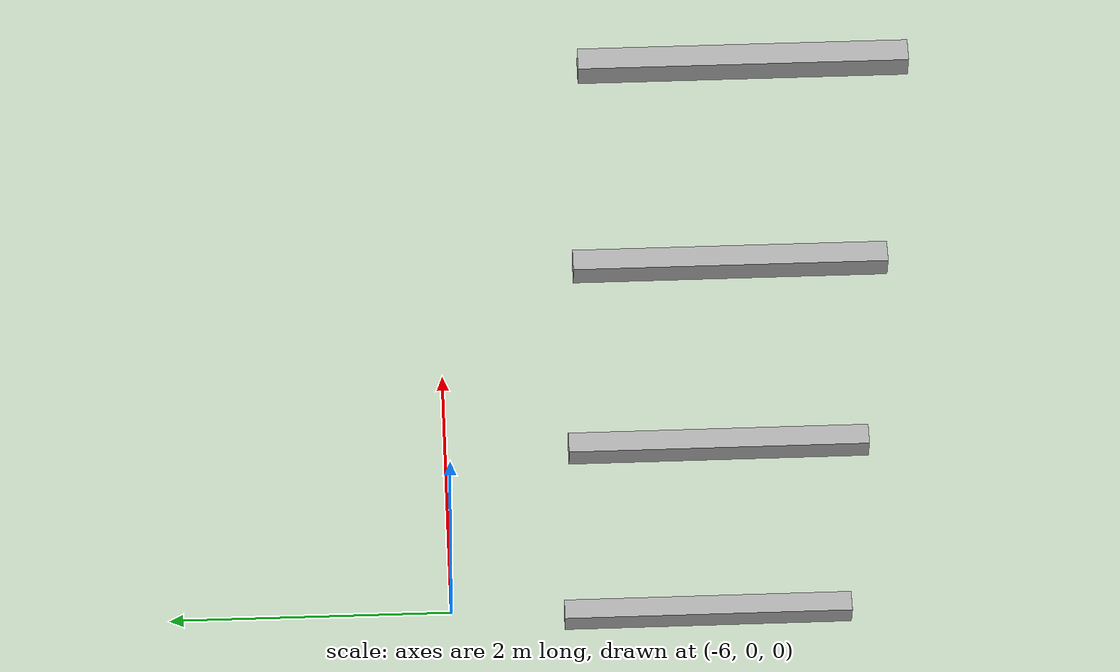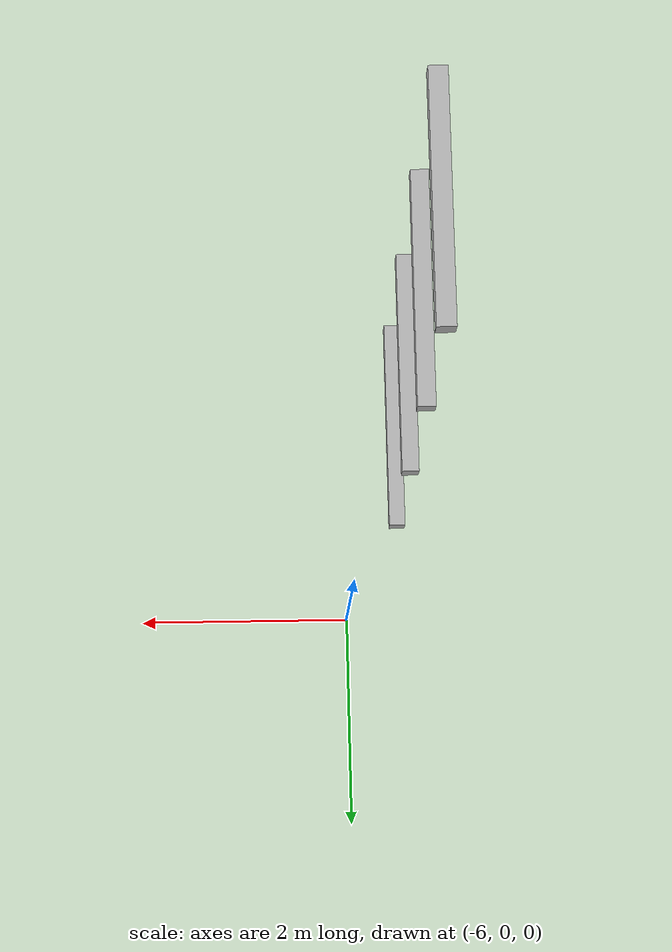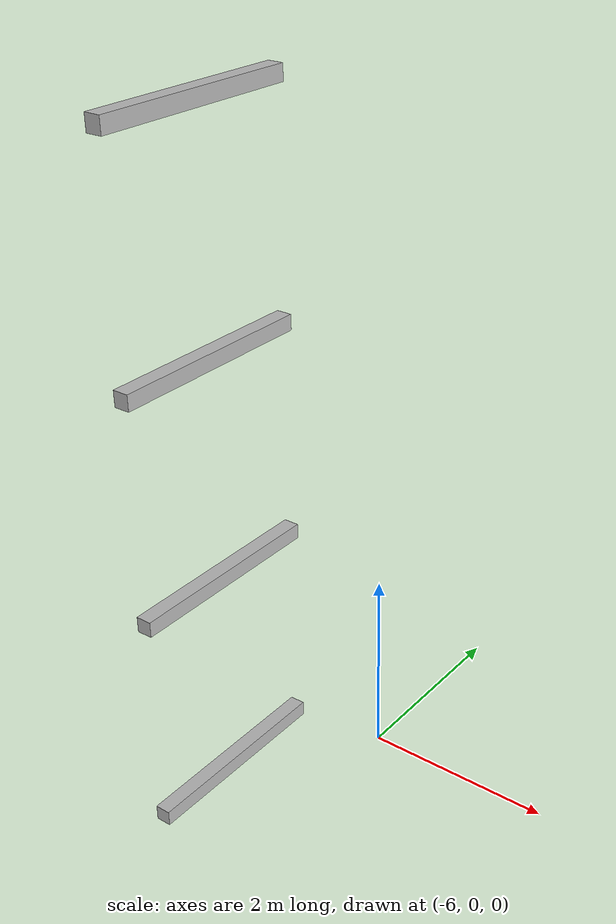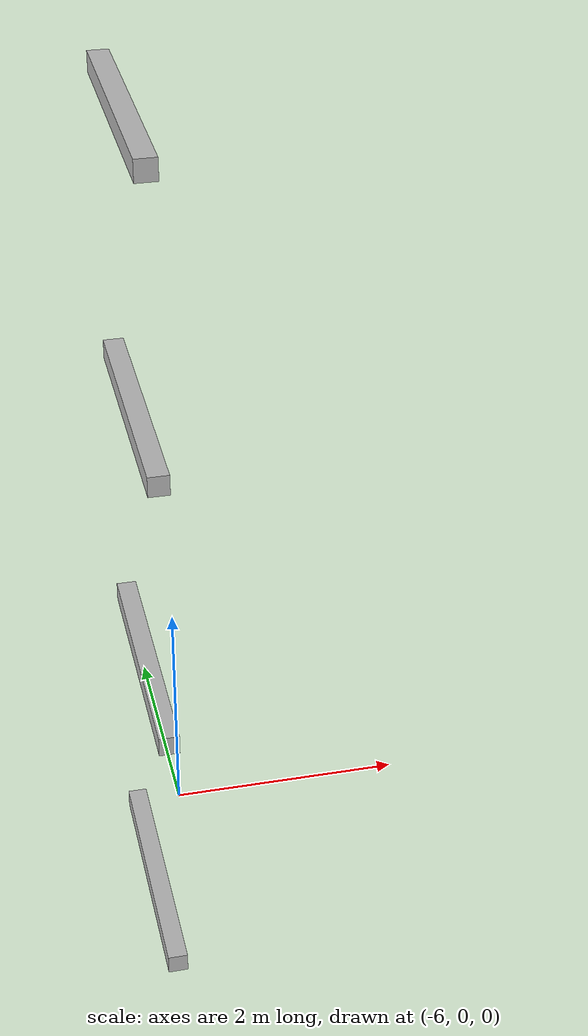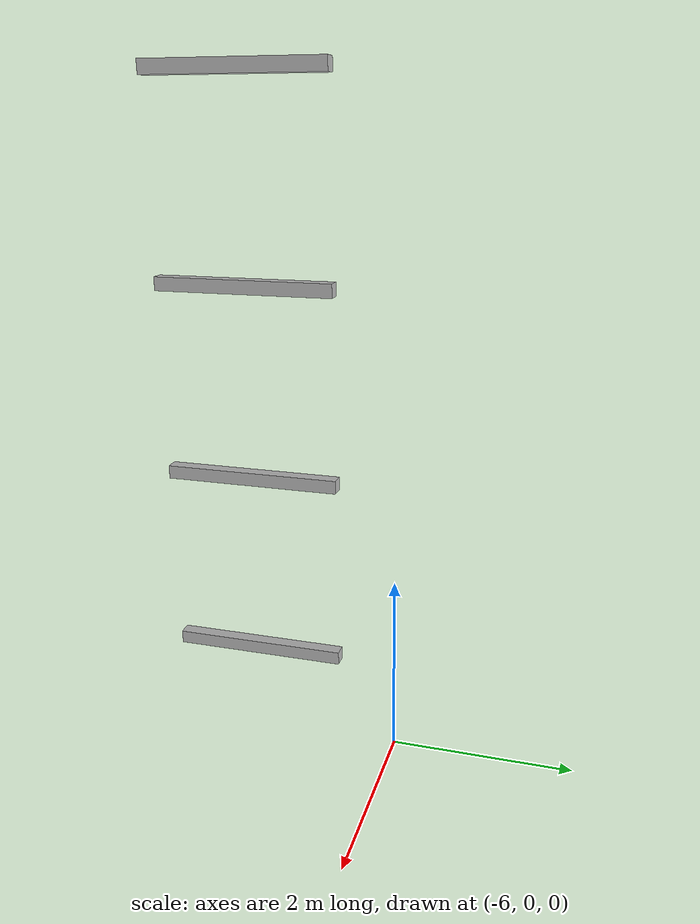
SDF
<sdf version="1.7">
 <world name="default">
  <model name="orthogonal_747_2.000.15_TS">
   <static>1</static>
   <link name="y_link_1_1_0">
    <inertial>
     <mass>1</mass>
     <inertia>
      <ixx>0.166667</ixx>
      <ixy>0</ixy>
      <ixz>0</ixz>
      <iyy>0.166667</iyy>
      <iyz>0</iyz>
      <izz>0.166667</izz>
     </inertia>
    </inertial>
    <pose>0 3.225 3.225 0 -0 0</pose>
    <visual name="visual_0">
     <laser_retro>974</laser_retro>
     <geometry><box><size>0.15 1e-06 0.15</size></box></geometry>
     <material>
      <script><name>Gazebo/Grey</name><uri>file://media/materials/scripts/gazebo.material</uri></script>
      <shader type="pixel"><normal_map>__default__</normal_map></shader>
      <ambient>0.678 0.498 0.659 1</ambient>
      <diffuse>0.7 0.7 0.7 1</diffuse>
      <specular>0.01 0.01 0.01 1</specular>
      <emissive>0 0 0 1</emissive>
     </material>
     <pose>0 -1 0 0 -0 0</pose>
     <transparency>1</transparency>
    </visual>
    <visual name="visual_1">
     <laser_retro>975</laser_retro>
     <geometry><box><size>0.15 1e-06 0.15</size></box></geometry>
     <material>
      <script><name>Gazebo/Grey</name><uri>file://media/materials/scripts/gazebo.material</uri></script>
      <shader type="pixel"><normal_map>__default__</normal_map></shader>
      <ambient>0.447 0.624 0.812 1</ambient>
      <diffuse>0.7 0.7 0.7 1</diffuse>
      <specular>0.01 0.01 0.01 1</specular>
      <emissive>0 0 0 1</emissive>
     </material>
     <pose>0 1 0 0 -0 0</pose>
     <transparency>1</transparency>
    </visual>
    <visual name="visual_2">
     <laser_retro>976</laser_retro>
     <geometry><box><size>0.15 2 1e-06</size></box></geometry>
     <material>
      <script><name>Gazebo/Grey</name><uri>file://media/materials/scripts/gazebo.material</uri></script>
      <shader type="pixel"><normal_map>__default__</normal_map></shader>
      <ambient>0.988 0.686 0.243 1</ambient>
      <diffuse>0.7 0.7 0.7 1</diffuse>
      <specular>0.01 0.01 0.01 1</specular>
      <emissive>0 0 0 1</emissive>
     </material>
     <pose>0 0 -0.075 0 -0 0</pose>
     <transparency>1</transparency>
    </visual>
    <visual name="visual_3">
     <laser_retro>977</laser_retro>
     <geometry><box><size>1e-06 2 0.15</size></box></geometry>
     <material>
      <script><name>Gazebo/Grey</name><uri>file://media/materials/scripts/gazebo.material</uri></script>
      <shader type="pixel"><normal_map>__default__</normal_map></shader>
      <ambient>0.988 0.914 0.31 1</ambient>
      <diffuse>0.7 0.7 0.7 1</diffuse>
      <specular>0.01 0.01 0.01 1</specular>
      <emissive>0 0 0 1</emissive>
     </material>
     <pose>0.075 0 0 0 -0 0</pose>
     <transparency>1</transparency>
    </visual>
    <visual name="visual_4">
     <laser_retro>978</laser_retro>
     <geometry><box><size>0.15 2 1e-06</size></box></geometry>
     <material>
      <script><name>Gazebo/Grey</name><uri>file://media/materials/scripts/gazebo.material</uri></script>
      <shader type="pixel"><normal_map>__default__</normal_map></shader>
      <ambient>0.937 0.161 0.161 1</ambient>
      <diffuse>0.7 0.7 0.7 1</diffuse>
      <specular>0.01 0.01 0.01 1</specular>
      <emissive>0 0 0 1</emissive>
     </material>
     <pose>0 0 0.075 0 -0 0</pose>
     <transparency>1</transparency>
    </visual>
    <visual name="visual_5">
     <laser_retro>979</laser_retro>
     <geometry><box><size>1e-06 2 0.15</size></box></geometry>
     <material>
      <script><name>Gazebo/Grey</name><uri>file://media/materials/scripts/gazebo.material</uri></script>
      <shader type="pixel"><normal_map>__default__</normal_map></shader>
      <ambient>0.541 0.886 0.204 1</ambient>
      <diffuse>0.7 0.7 0.7 1</diffuse>
      <specular>0.01 0.01 0.01 1</specular>
      <emissive>0 0 0 1</emissive>
     </material>
     <pose>-0.075 0 0 0 -0 0</pose>
     <transparency>1</transparency>
    </visual>
    <visual name="visual_texture">
     <geometry><box><size>0.149985 1.9998 0.149985</size></box></geometry>
     <material>
      <script>
       <uri>model://BASE_MODELS/simple_block_v2_textured/materials/scripts</uri>
       <uri>model://BASE_MODELS/simple_block_v2_textured/materials/textures</uri>
       <name>metal</name>
      </script>
     </material>
     <laser_retro>980</laser_retro>
    </visual>
    <collision name="collision">
     <geometry><box><size>0.15 2 0.15</size></box></geometry>
     <surface>
      <friction>
       <ode><mu>1</mu><mu2>1</mu2><fdir1>0 0 0</fdir1><slip1>0</slip1><slip2>0</slip2></ode>
       <torsional>
        <coefficient>1</coefficient>
        <patch_radius>0</patch_radius>
        <surface_radius>0</surface_radius>
        <use_patch_radius>1</use_patch_radius>
        <ode><slip>0</slip></ode>
       </torsional>
      </friction>
      <bounce><restitution_coefficient>0</restitution_coefficient><threshold>1e+06</threshold></bounce>
      <contact>
       <collide_without_contact>0</collide_without_contact>
       <collide_without_contact_bitmask>1</collide_without_contact_bitmask>
       <collide_bitmask>1</collide_bitmask>
       <ode>
        <soft_cfm>0</soft_cfm>
        <soft_erp>0.2</soft_erp>
        <kp>1e+13</kp>
        <kd>1</kd>
        <max_vel>0.01</max_vel>
        <min_depth>0</min_depth>
       </ode>
       <bullet>
        <split_impulse>1</split_impulse>
        <split_impulse_penetration_threshold>-0.01</split_impulse_penetration_threshold>
        <soft_cfm>0</soft_cfm>
        <soft_erp>0.2</soft_erp>
        <kp>1e+13</kp>
        <kd>1</kd>
       </bullet>
      </contact>
     </surface>
    </collision>
   </link>
   <link name="y_link_2_1_0">
    <inertial>
     <mass>1</mass>
     <inertia>
      <ixx>0.166667</ixx>
      <ixy>0</ixy>
      <ixz>0</ixz>
      <iyy>0.166667</iyy>
      <iyz>0</iyz>
      <izz>0.166667</izz>
     </inertia>
    </inertial>
    <pose>0 3.225 5.375 0 -0 0</pose>
    <visual name="visual_0">
     <laser_retro>1877</laser_retro>
     <geometry><box><size>0.15 1e-06 0.15</size></box></geometry>
     <material>
      <script><name>Gazebo/Grey</name><uri>file://media/materials/scripts/gazebo.material</uri></script>
      <shader type="pixel"><normal_map>__default__</normal_map></shader>
      <ambient>0.678 0.498 0.659 1</ambient>
      <diffuse>0.7 0.7 0.7 1</diffuse>
      <specular>0.01 0.01 0.01 1</specular>
      <emissive>0 0 0 1</emissive>
     </material>
     <pose>0 -1 0 0 -0 0</pose>
     <transparency>1</transparency>
    </visual>
    <visual name="visual_1">
     <laser_retro>1878</laser_retro>
     <geometry><box><size>0.15 1e-06 0.15</size></box></geometry>
     <material>
      <script><name>Gazebo/Grey</name><uri>file://media/materials/scripts/gazebo.material</uri></script>
      <shader type="pixel"><normal_map>__default__</normal_map></shader>
      <ambient>0.447 0.624 0.812 1</ambient>
      <diffuse>0.7 0.7 0.7 1</diffuse>
      <specular>0.01 0.01 0.01 1</specular>
      <emissive>0 0 0 1</emissive>
     </material>
     <pose>0 1 0 0 -0 0</pose>
     <transparency>1</transparency>
    </visual>
    <visual name="visual_2">
     <laser_retro>1879</laser_retro>
     <geometry><box><size>0.15 2 1e-06</size></box></geometry>
     <material>
      <script><name>Gazebo/Grey</name><uri>file://media/materials/scripts/gazebo.material</uri></script>
      <shader type="pixel"><normal_map>__default__</normal_map></shader>
      <ambient>0.988 0.686 0.243 1</ambient>
      <diffuse>0.7 0.7 0.7 1</diffuse>
      <specular>0.01 0.01 0.01 1</specular>
      <emissive>0 0 0 1</emissive>
     </material>
     <pose>0 0 -0.075 0 -0 0</pose>
     <transparency>1</transparency>
    </visual>
    <visual name="visual_3">
     <laser_retro>1880</laser_retro>
     <geometry><box><size>1e-06 2 0.15</size></box></geometry>
     <material>
      <script><name>Gazebo/Grey</name><uri>file://media/materials/scripts/gazebo.material</uri></script>
      <shader type="pixel"><normal_map>__default__</normal_map></shader>
      <ambient>0.988 0.914 0.31 1</ambient>
      <diffuse>0.7 0.7 0.7 1</diffuse>
      <specular>0.01 0.01 0.01 1</specular>
      <emissive>0 0 0 1</emissive>
     </material>
     <pose>0.075 0 0 0 -0 0</pose>
     <transparency>1</transparency>
    </visual>
    <visual name="visual_4">
     <laser_retro>1881</laser_retro>
     <geometry><box><size>0.15 2 1e-06</size></box></geometry>
     <material>
      <script><name>Gazebo/Grey</name><uri>file://media/materials/scripts/gazebo.material</uri></script>
      <shader type="pixel"><normal_map>__default__</normal_map></shader>
      <ambient>0.937 0.161 0.161 1</ambient>
      <diffuse>0.7 0.7 0.7 1</diffuse>
      <specular>0.01 0.01 0.01 1</specular>
      <emissive>0 0 0 1</emissive>
     </material>
     <pose>0 0 0.075 0 -0 0</pose>
     <transparency>1</transparency>
    </visual>
    <visual name="visual_5">
     <laser_retro>1882</laser_retro>
     <geometry><box><size>1e-06 2 0.15</size></box></geometry>
     <material>
      <script><name>Gazebo/Grey</name><uri>file://media/materials/scripts/gazebo.material</uri></script>
      <shader type="pixel"><normal_map>__default__</normal_map></shader>
      <ambient>0.541 0.886 0.204 1</ambient>
      <diffuse>0.7 0.7 0.7 1</diffuse>
      <specular>0.01 0.01 0.01 1</specular>
      <emissive>0 0 0 1</emissive>
     </material>
     <pose>-0.075 0 0 0 -0 0</pose>
     <transparency>1</transparency>
    </visual>
    <visual name="visual_texture">
     <geometry><box><size>0.149985 1.9998 0.149985</size></box></geometry>
     <material>
      <script>
       <uri>model://BASE_MODELS/simple_block_v2_textured/materials/scripts</uri>
       <uri>model://BASE_MODELS/simple_block_v2_textured/materials/textures</uri>
       <name>metal</name>
      </script>
     </material>
     <laser_retro>1883</laser_retro>
    </visual>
    <collision name="collision">
     <geometry><box><size>0.15 2 0.15</size></box></geometry>
     <surface>
      <friction>
       <ode><mu>1</mu><mu2>1</mu2><fdir1>0 0 0</fdir1><slip1>0</slip1><slip2>0</slip2></ode>
       <torsional>
        <coefficient>1</coefficient>
        <patch_radius>0</patch_radius>
        <surface_radius>0</surface_radius>
        <use_patch_radius>1</use_patch_radius>
        <ode><slip>0</slip></ode>
       </torsional>
      </friction>
      <bounce><restitution_coefficient>0</restitution_coefficient><threshold>1e+06</threshold></bounce>
      <contact>
       <collide_without_contact>0</collide_without_contact>
       <collide_without_contact_bitmask>1</collide_without_contact_bitmask>
       <collide_bitmask>1</collide_bitmask>
       <ode>
        <soft_cfm>0</soft_cfm>
        <soft_erp>0.2</soft_erp>
        <kp>1e+13</kp>
        <kd>1</kd>
        <max_vel>0.01</max_vel>
        <min_depth>0</min_depth>
       </ode>
       <bullet>
        <split_impulse>1</split_impulse>
        <split_impulse_penetration_threshold>-0.01</split_impulse_penetration_threshold>
        <soft_cfm>0</soft_cfm>
        <soft_erp>0.2</soft_erp>
        <kp>1e+13</kp>
        <kd>1</kd>
       </bullet>
      </contact>
     </surface>
    </collision>
   </link>
   <link name="y_link_3_1_0">
    <inertial>
     <mass>1</mass>
     <inertia>
      <ixx>0.166667</ixx>
      <ixy>0</ixy>
      <ixz>0</ixz>
      <iyy>0.166667</iyy>
      <iyz>0</iyz>
      <izz>0.166667</izz>
     </inertia>
    </inertial>
    <pose>0 3.225 7.525 0 -0 0</pose>
    <visual name="visual_0">
     <laser_retro>2780</laser_retro>
     <geometry><box><size>0.15 1e-06 0.15</size></box></geometry>
     <material>
      <script><name>Gazebo/Grey</name><uri>file://media/materials/scripts/gazebo.material</uri></script>
      <shader type="pixel"><normal_map>__default__</normal_map></shader>
      <ambient>0.678 0.498 0.659 1</ambient>
      <diffuse>0.7 0.7 0.7 1</diffuse>
      <specular>0.01 0.01 0.01 1</specular>
      <emissive>0 0 0 1</emissive>
     </material>
     <pose>0 -1 0 0 -0 0</pose>
     <transparency>1</transparency>
    </visual>
    <visual name="visual_1">
     <laser_retro>2781</laser_retro>
     <geometry><box><size>0.15 1e-06 0.15</size></box></geometry>
     <material>
      <script><name>Gazebo/Grey</name><uri>file://media/materials/scripts/gazebo.material</uri></script>
      <shader type="pixel"><normal_map>__default__</normal_map></shader>
      <ambient>0.447 0.624 0.812 1</ambient>
      <diffuse>0.7 0.7 0.7 1</diffuse>
      <specular>0.01 0.01 0.01 1</specular>
      <emissive>0 0 0 1</emissive>
     </material>
     <pose>0 1 0 0 -0 0</pose>
     <transparency>1</transparency>
    </visual>
    <visual name="visual_2">
     <laser_retro>2782</laser_retro>
     <geometry><box><size>0.15 2 1e-06</size></box></geometry>
     <material>
      <script><name>Gazebo/Grey</name><uri>file://media/materials/scripts/gazebo.material</uri></script>
      <shader type="pixel"><normal_map>__default__</normal_map></shader>
      <ambient>0.988 0.686 0.243 1</ambient>
      <diffuse>0.7 0.7 0.7 1</diffuse>
      <specular>0.01 0.01 0.01 1</specular>
      <emissive>0 0 0 1</emissive>
     </material>
     <pose>0 0 -0.075 0 -0 0</pose>
     <transparency>1</transparency>
    </visual>
    <visual name="visual_3">
     <laser_retro>2783</laser_retro>
     <geometry><box><size>1e-06 2 0.15</size></box></geometry>
     <material>
      <script><name>Gazebo/Grey</name><uri>file://media/materials/scripts/gazebo.material</uri></script>
      <shader type="pixel"><normal_map>__default__</normal_map></shader>
      <ambient>0.988 0.914 0.31 1</ambient>
      <diffuse>0.7 0.7 0.7 1</diffuse>
      <specular>0.01 0.01 0.01 1</specular>
      <emissive>0 0 0 1</emissive>
     </material>
     <pose>0.075 0 0 0 -0 0</pose>
     <transparency>1</transparency>
    </visual>
    <visual name="visual_4">
     <laser_retro>2784</laser_retro>
     <geometry><box><size>0.15 2 1e-06</size></box></geometry>
     <material>
      <script><name>Gazebo/Grey</name><uri>file://media/materials/scripts/gazebo.material</uri></script>
      <shader type="pixel"><normal_map>__default__</normal_map></shader>
      <ambient>0.937 0.161 0.161 1</ambient>
      <diffuse>0.7 0.7 0.7 1</diffuse>
      <specular>0.01 0.01 0.01 1</specular>
      <emissive>0 0 0 1</emissive>
     </material>
     <pose>0 0 0.075 0 -0 0</pose>
     <transparency>1</transparency>
    </visual>
    <visual name="visual_5">
     <laser_retro>2785</laser_retro>
     <geometry><box><size>1e-06 2 0.15</size></box></geometry>
     <material>
      <script><name>Gazebo/Grey</name><uri>file://media/materials/scripts/gazebo.material</uri></script>
      <shader type="pixel"><normal_map>__default__</normal_map></shader>
      <ambient>0.541 0.886 0.204 1</ambient>
      <diffuse>0.7 0.7 0.7 1</diffuse>
      <specular>0.01 0.01 0.01 1</specular>
      <emissive>0 0 0 1</emissive>
     </material>
     <pose>-0.075 0 0 0 -0 0</pose>
     <transparency>1</transparency>
    </visual>
    <visual name="visual_texture">
     <geometry><box><size>0.149985 1.9998 0.149985</size></box></geometry>
     <material>
      <script>
       <uri>model://BASE_MODELS/simple_block_v2_textured/materials/scripts</uri>
       <uri>model://BASE_MODELS/simple_block_v2_textured/materials/textures</uri>
       <name>metal</name>
      </script>
     </material>
     <laser_retro>2786</laser_retro>
    </visual>
    <collision name="collision">
     <geometry><box><size>0.15 2 0.15</size></box></geometry>
     <surface>
      <friction>
       <ode><mu>1</mu><mu2>1</mu2><fdir1>0 0 0</fdir1><slip1>0</slip1><slip2>0</slip2></ode>
       <torsional>
        <coefficient>1</coefficient>
        <patch_radius>0</patch_radius>
        <surface_radius>0</surface_radius>
        <use_patch_radius>1</use_patch_radius>
        <ode><slip>0</slip></ode>
       </torsional>
      </friction>
      <bounce><restitution_coefficient>0</restitution_coefficient><threshold>1e+06</threshold></bounce>
      <contact>
       <collide_without_contact>0</collide_without_contact>
       <collide_without_contact_bitmask>1</collide_without_contact_bitmask>
       <collide_bitmask>1</collide_bitmask>
       <ode>
        <soft_cfm>0</soft_cfm>
        <soft_erp>0.2</soft_erp>
        <kp>1e+13</kp>
        <kd>1</kd>
        <max_vel>0.01</max_vel>
        <min_depth>0</min_depth>
       </ode>
       <bullet>
        <split_impulse>1</split_impulse>
        <split_impulse_penetration_threshold>-0.01</split_impulse_penetration_threshold>
        <soft_cfm>0</soft_cfm>
        <soft_erp>0.2</soft_erp>
        <kp>1e+13</kp>
        <kd>1</kd>
       </bullet>
      </contact>
     </surface>
    </collision>
   </link>
   <link name="y_link_4_1_0">
    <inertial>
     <mass>1</mass>
     <inertia>
      <ixx>0.166667</ixx>
      <ixy>0</ixy>
      <ixz>0</ixz>
      <iyy>0.166667</iyy>
      <iyz>0</iyz>
      <izz>0.166667</izz>
     </inertia>
    </inertial>
    <pose>0 3.225 9.675 0 -0 0</pose>
    <visual name="visual_0">
     <laser_retro>3683</laser_retro>
     <geometry><box><size>0.15 1e-06 0.15</size></box></geometry>
     <material>
      <script><name>Gazebo/Grey</name><uri>file://media/materials/scripts/gazebo.material</uri></script>
      <shader type="pixel"><normal_map>__default__</normal_map></shader>
      <ambient>0.678 0.498 0.659 1</ambient>
      <diffuse>0.7 0.7 0.7 1</diffuse>
      <specular>0.01 0.01 0.01 1</specular>
      <emissive>0 0 0 1</emissive>
     </material>
     <pose>0 -1 0 0 -0 0</pose>
     <transparency>1</transparency>
    </visual>
    <visual name="visual_1">
     <laser_retro>3684</laser_retro>
     <geometry><box><size>0.15 1e-06 0.15</size></box></geometry>
     <material>
      <script><name>Gazebo/Grey</name><uri>file://media/materials/scripts/gazebo.material</uri></script>
      <shader type="pixel"><normal_map>__default__</normal_map></shader>
      <ambient>0.447 0.624 0.812 1</ambient>
      <diffuse>0.7 0.7 0.7 1</diffuse>
      <specular>0.01 0.01 0.01 1</specular>
      <emissive>0 0 0 1</emissive>
     </material>
     <pose>0 1 0 0 -0 0</pose>
     <transparency>1</transparency>
    </visual>
    <visual name="visual_2">
     <laser_retro>3685</laser_retro>
     <geometry><box><size>0.15 2 1e-06</size></box></geometry>
     <material>
      <script><name>Gazebo/Grey</name><uri>file://media/materials/scripts/gazebo.material</uri></script>
      <shader type="pixel"><normal_map>__default__</normal_map></shader>
      <ambient>0.988 0.686 0.243 1</ambient>
      <diffuse>0.7 0.7 0.7 1</diffuse>
      <specular>0.01 0.01 0.01 1</specular>
      <emissive>0 0 0 1</emissive>
     </material>
     <pose>0 0 -0.075 0 -0 0</pose>
     <transparency>1</transparency>
    </visual>
    <visual name="visual_3">
     <laser_retro>3686</laser_retro>
     <geometry><box><size>1e-06 2 0.15</size></box></geometry>
     <material>
      <script><name>Gazebo/Grey</name><uri>file://media/materials/scripts/gazebo.material</uri></script>
      <shader type="pixel"><normal_map>__default__</normal_map></shader>
      <ambient>0.988 0.914 0.31 1</ambient>
      <diffuse>0.7 0.7 0.7 1</diffuse>
      <specular>0.01 0.01 0.01 1</specular>
      <emissive>0 0 0 1</emissive>
     </material>
     <pose>0.075 0 0 0 -0 0</pose>
     <transparency>1</transparency>
    </visual>
    <visual name="visual_4">
     <laser_retro>3687</laser_retro>
     <geometry><box><size>0.15 2 1e-06</size></box></geometry>
     <material>
      <script><name>Gazebo/Grey</name><uri>file://media/materials/scripts/gazebo.material</uri></script>
      <shader type="pixel"><normal_map>__default__</normal_map></shader>
      <ambient>0.937 0.161 0.161 1</ambient>
      <diffuse>0.7 0.7 0.7 1</diffuse>
      <specular>0.01 0.01 0.01 1</specular>
      <emissive>0 0 0 1</emissive>
     </material>
     <pose>0 0 0.075 0 -0 0</pose>
     <transparency>1</transparency>
    </visual>
    <visual name="visual_5">
     <laser_retro>3688</laser_retro>
     <geometry><box><size>1e-06 2 0.15</size></box></geometry>
     <material>
      <script><name>Gazebo/Grey</name><uri>file://media/materials/scripts/gazebo.material</uri></script>
      <shader type="pixel"><normal_map>__default__</normal_map></shader>
      <ambient>0.541 0.886 0.204 1</ambient>
      <diffuse>0.7 0.7 0.7 1</diffuse>
      <specular>0.01 0.01 0.01 1</specular>
      <emissive>0 0 0 1</emissive>
     </material>
     <pose>-0.075 0 0 0 -0 0</pose>
     <transparency>1</transparency>
    </visual>
    <visual name="visual_texture">
     <geometry><box><size>0.149985 1.9998 0.149985</size></box></geometry>
     <material>
      <script>
       <uri>model://BASE_MODELS/simple_block_v2_textured/materials/scripts</uri>
       <uri>model://BASE_MODELS/simple_block_v2_textured/materials/textures</uri>
       <name>metal</name>
      </script>
     </material>
     <laser_retro>3689</laser_retro>
    </visual>
    <collision name="collision">
     <geometry><box><size>0.15 2 0.15</size></box></geometry>
     <surface>
      <friction>
       <ode><mu>1</mu><mu2>1</mu2><fdir1>0 0 0</fdir1><slip1>0</slip1><slip2>0</slip2></ode>
       <torsional>
        <coefficient>1</coefficient>
        <patch_radius>0</patch_radius>
        <surface_radius>0</surface_radius>
        <use_patch_radius>1</use_patch_radius>
        <ode><slip>0</slip></ode>
       </torsional>
      </friction>
      <bounce><restitution_coefficient>0</restitution_coefficient><threshold>1e+06</threshold></bounce>
      <contact>
       <collide_without_contact>0</collide_without_contact>
       <collide_without_contact_bitmask>1</collide_without_contact_bitmask>
       <collide_bitmask>1</collide_bitmask>
       <ode>
        <soft_cfm>0</soft_cfm>
        <soft_erp>0.2</soft_erp>
        <kp>1e+13</kp>
        <kd>1</kd>
        <max_vel>0.01</max_vel>
        <min_depth>0</min_depth>
       </ode>
       <bullet>
        <split_impulse>1</split_impulse>
        <split_impulse_penetration_threshold>-0.01</split_impulse_penetration_threshold>
        <soft_cfm>0</soft_cfm>
        <soft_erp>0.2</soft_erp>
        <kp>1e+13</kp>
        <kd>1</kd>
       </bullet>
      </contact>
     </surface>
    </collision>
   </link>
   <pose>-6.47624 -5 -2.5 0 -0 0</pose>
  </model>
 </world>
</sdf>
